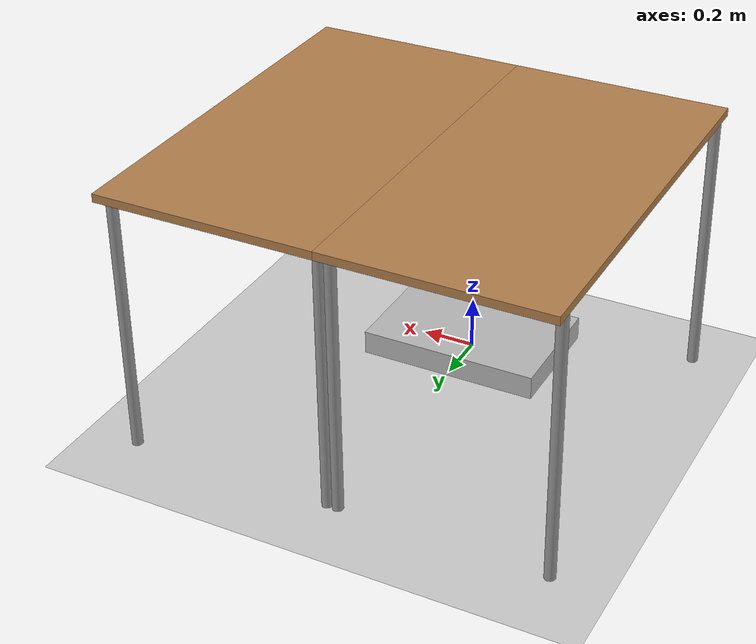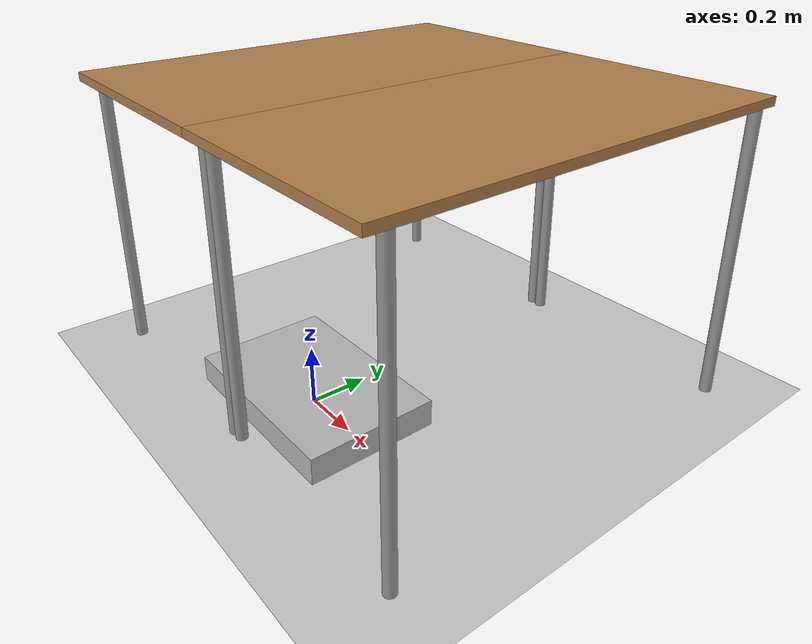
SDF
<sdf version="1.6">
 <world name="default">
  <light name="sun" type="directional">
   <pose>0 0 10 0 -0 0</pose>
   <diffuse>0.8 0.8 0.8 1</diffuse>
   <specular>0.2 0.2 0.2 1</specular>
   <attenuation>
    <range>1000</range>
    <constant>0.9</constant>
    <linear>0.01</linear>
    <quadratic>0.001</quadratic>
   </attenuation>
   <direction>-0.5 0.1 -0.9</direction>
  </light>
  <model name="ground_plane">
   <static>1</static>
   <link name="link">
    <collision name="collision">
     <geometry><plane><normal>0 0 1</normal><size>100 100</size></plane></geometry>
     <surface>
      <contact><collide_bitmask>65535</collide_bitmask></contact>
      <friction><ode><mu>100</mu><mu2>50</mu2></ode></friction>
     </surface>
    </collision>
    <visual name="visual">
     <cast_shadows>0</cast_shadows>
     <geometry><plane><normal>0 0 1</normal><size>100 100</size></plane></geometry>
     <material>
      <script><uri>file://media/materials/scripts/gazebo.material</uri><name>Gazebo/Grey</name></script>
     </material>
    </visual>
   </link>
  </model>
  <gravity>0 0 -9.8</gravity>
  <magnetic_field>6e-06 2.3e-05 -4.2e-05</magnetic_field>
  <atmosphere type="adiabatic"/>
  <physics name="default_physics" default="0" type="ode">
   <max_step_size>0.001</max_step_size>
   <real_time_factor>1</real_time_factor>
   <real_time_update_rate>1000</real_time_update_rate>
  </physics>
  <scene><ambient>0.4 0.4 0.4 1</ambient><background>0.7 0.7 0.7 1</background><shadows>0</shadows></scene>
  <audio><device>default</device></audio>
  <spherical_coordinates>
   <surface_model>EARTH_WGS84</surface_model>
   <latitude_deg>0</latitude_deg>
   <longitude_deg>0</longitude_deg>
   <elevation>0</elevation>
   <heading_deg>0</heading_deg>
  </spherical_coordinates>
  <model name="table">
   <static>1</static>
   <link name="link">
    <collision name="surface">
     <pose>0 0 1 0 -0 0</pose>
     <geometry><box><size>1.5 0.8 0.03</size></box></geometry>
     <surface><friction><ode><mu>0.6</mu><mu2>0.6</mu2></ode></friction></surface>
    </collision>
    <visual name="visual1">
     <pose>0 0 1 0 -0 0</pose>
     <geometry><box><size>1.5 0.8 0.03</size></box></geometry>
     <material>
      <script><uri>file://media/materials/scripts/gazebo.material</uri><name>Gazebo/Wood</name></script>
     </material>
    </visual>
    <collision name="front_left_leg">
     <pose>0.68 0.38 0.5 0 -0 0</pose>
     <geometry><cylinder><radius>0.02</radius><length>1</length></cylinder></geometry>
    </collision>
    <visual name="front_left_leg">
     <pose>0.68 0.38 0.5 0 -0 0</pose>
     <geometry><cylinder><radius>0.02</radius><length>1</length></cylinder></geometry>
     <material>
      <script><uri>file://media/materials/scripts/gazebo.material</uri><name>Gazebo/Grey</name></script>
     </material>
    </visual>
    <collision name="front_right_leg">
     <pose>0.68 -0.38 0.5 0 -0 0</pose>
     <geometry><cylinder><radius>0.02</radius><length>1</length></cylinder></geometry>
    </collision>
    <visual name="front_right_leg">
     <pose>0.68 -0.38 0.5 0 -0 0</pose>
     <geometry><cylinder><radius>0.02</radius><length>1</length></cylinder></geometry>
     <material>
      <script><uri>file://media/materials/scripts/gazebo.material</uri><name>Gazebo/Grey</name></script>
     </material>
    </visual>
    <collision name="back_right_leg">
     <pose>-0.68 -0.38 0.5 0 -0 0</pose>
     <geometry><cylinder><radius>0.02</radius><length>1</length></cylinder></geometry>
    </collision>
    <visual name="back_right_leg">
     <pose>-0.68 -0.38 0.5 0 -0 0</pose>
     <geometry><cylinder><radius>0.02</radius><length>1</length></cylinder></geometry>
     <material>
      <script><uri>file://media/materials/scripts/gazebo.material</uri><name>Gazebo/Grey</name></script>
     </material>
    </visual>
    <collision name="back_left_leg">
     <pose>-0.68 0.38 0.5 0 -0 0</pose>
     <geometry><cylinder><radius>0.02</radius><length>1</length></cylinder></geometry>
    </collision>
    <visual name="back_left_leg">
     <pose>-0.68 0.38 0.5 0 -0 0</pose>
     <geometry><cylinder><radius>0.02</radius><length>1</length></cylinder></geometry>
     <material>
      <script><uri>file://media/materials/scripts/gazebo.material</uri><name>Gazebo/Grey</name></script>
     </material>
    </visual>
   </link>
   <pose>-0.4 0.4 0 0 -0 1.5708</pose>
  </model>
  <model name="table_clone">
   <static>1</static>
   <link name="link">
    <collision name="surface">
     <pose>0 0 1 0 -0 0</pose>
     <geometry><box><size>1.5 0.8 0.03</size></box></geometry>
     <surface><friction><ode><mu>0.6</mu><mu2>0.6</mu2></ode></friction></surface>
    </collision>
    <visual name="visual1">
     <pose>0 0 1 0 -0 0</pose>
     <geometry><box><size>1.5 0.8 0.03</size></box></geometry>
     <material>
      <script><uri>file://media/materials/scripts/gazebo.material</uri><name>Gazebo/Wood</name></script>
     </material>
    </visual>
    <collision name="front_left_leg">
     <pose>0.68 0.38 0.5 0 -0 0</pose>
     <geometry><cylinder><radius>0.02</radius><length>1</length></cylinder></geometry>
    </collision>
    <visual name="front_left_leg">
     <pose>0.68 0.38 0.5 0 -0 0</pose>
     <geometry><cylinder><radius>0.02</radius><length>1</length></cylinder></geometry>
     <material>
      <script><uri>file://media/materials/scripts/gazebo.material</uri><name>Gazebo/Grey</name></script>
     </material>
    </visual>
    <collision name="front_right_leg">
     <pose>0.68 -0.38 0.5 0 -0 0</pose>
     <geometry><cylinder><radius>0.02</radius><length>1</length></cylinder></geometry>
    </collision>
    <visual name="front_right_leg">
     <pose>0.68 -0.38 0.5 0 -0 0</pose>
     <geometry><cylinder><radius>0.02</radius><length>1</length></cylinder></geometry>
     <material>
      <script><uri>file://media/materials/scripts/gazebo.material</uri><name>Gazebo/Grey</name></script>
     </material>
    </visual>
    <collision name="back_right_leg">
     <pose>-0.68 -0.38 0.5 0 -0 0</pose>
     <geometry><cylinder><radius>0.02</radius><length>1</length></cylinder></geometry>
    </collision>
    <visual name="back_right_leg">
     <pose>-0.68 -0.38 0.5 0 -0 0</pose>
     <geometry><cylinder><radius>0.02</radius><length>1</length></cylinder></geometry>
     <material>
      <script><uri>file://media/materials/scripts/gazebo.material</uri><name>Gazebo/Grey</name></script>
     </material>
    </visual>
    <collision name="back_left_leg">
     <pose>-0.68 0.38 0.5 0 -0 0</pose>
     <geometry><cylinder><radius>0.02</radius><length>1</length></cylinder></geometry>
    </collision>
    <visual name="back_left_leg">
     <pose>-0.68 0.38 0.5 0 -0 0</pose>
     <geometry><cylinder><radius>0.02</radius><length>1</length></cylinder></geometry>
     <material>
      <script><uri>file://media/materials/scripts/gazebo.material</uri><name>Gazebo/Grey</name></script>
     </material>
    </visual>
   </link>
   <pose>0.4 0.4 0 0 -0 1.5708</pose>
  </model>
  <model name="chessboard">
   <static>1</static>
   <link name="link_0">
    <inertial>
     <mass>1</mass>
     <inertia>
      <ixx>0.166667</ixx>
      <ixy>0</ixy>
      <ixz>0</ixz>
      <iyy>0.166667</iyy>
      <iyz>0</iyz>
      <izz>0.166667</izz>
     </inertia>
    </inertial>
    <visual name="visual">
     <geometry><mesh><uri>model://chessboard/meshes/chessboard.dae</uri><scale>1 1 1</scale></mesh></geometry>
    </visual>
    <collision name="collision">
     <pose>0 0 0.005 0 -0 0</pose>
     <geometry><box><size>0.368 0.368 0.01</size></box></geometry>
     <surface>
      <friction><ode><mu>1</mu><mu2>1</mu2></ode></friction>
      <contact><ode><kp>1e+07</kp><kd>1</kd><max_vel>0.001</max_vel><min_depth>0.1</min_depth></ode></contact>
     </surface>
    </collision>
   </link>
  </model>
  <model name="chessboard_base">
   <static>1</static>
   <link name="link_0">
    <inertial>
     <mass>1</mass>
     <inertia>
      <ixx>0.166667</ixx>
      <ixy>0</ixy>
      <ixz>0</ixz>
      <iyy>0.166667</iyy>
      <iyz>0</iyz>
      <izz>0.166667</izz>
     </inertia>
    </inertial>
    <visual name="visual">
     <pose>0 0 0.045 0 -0 0</pose>
     <geometry><box><size>0.68 0.45 0.09</size></box></geometry>
    </visual>
    <collision name="collision">
     <pose>0 0 0.045 0 -0 0</pose>
     <geometry><box><size>0.68 0.45 0.09</size></box></geometry>
     <surface>
      <friction><ode><mu>1</mu><mu2>1</mu2></ode></friction>
      <contact><ode><kp>1e+07</kp><kd>1</kd><max_vel>0.001</max_vel><min_depth>0.1</min_depth></ode></contact>
     </surface>
    </collision>
   </link>
  </model>
  <model name="pawn_white0">
   <static>0</static>
   <link name="link_0">
    <inertial>
     <mass>0.01</mass>
     <inertia><ixx>1e-06</ixx><ixy>0</ixy><ixz>0</ixz><iyy>1e-06</iyy><iyz>0</iyz><izz>5e-07</izz></inertia>
    </inertial>
    <kinematic>1</kinematic>
    <visual name="visual">
     <geometry><mesh><uri>model://pawn_white/meshes/pawn.dae</uri><scale>1 1 1</scale></mesh></geometry>
     <material>
      <lighting>1</lighting>
      <script><uri>file://media/materials/scripts/gazebo.material</uri><name>Gazebo/Grey</name></script>
      <shader type="vertex"><normal_map>__default__</normal_map></shader>
      <ambient>1 0.894 0.71 1</ambient>
      <diffuse>0.5 0.4 0.3 1</diffuse>
      <specular>0.01 0.01 0.01 1</specular>
      <emissive>0 0 0 1</emissive>
     </material>
    </visual>
    <collision name="collision">
     <pose>0 0 0.015 0 -0 0</pose>
     <geometry><cylinder><radius>0.005</radius><length>0.03</length></cylinder></geometry>
     <surface>
      <friction><ode><mu>1</mu><mu2>1</mu2></ode></friction>
      <contact><ode><kp>1e+07</kp><kd>1</kd><max_vel>0.001</max_vel><min_depth>0.1</min_depth></ode></contact>
     </surface>
    </collision>
   </link>
  </model>
  <model name="pawn_white1">
   <static>0</static>
   <link name="link_0">
    <inertial>
     <mass>0.01</mass>
     <inertia><ixx>1e-06</ixx><ixy>0</ixy><ixz>0</ixz><iyy>1e-06</iyy><iyz>0</iyz><izz>5e-07</izz></inertia>
    </inertial>
    <kinematic>1</kinematic>
    <visual name="visual">
     <geometry><mesh><uri>model://pawn_white/meshes/pawn.dae</uri><scale>1 1 1</scale></mesh></geometry>
     <material>
      <lighting>1</lighting>
      <script><uri>file://media/materials/scripts/gazebo.material</uri><name>Gazebo/Grey</name></script>
      <shader type="vertex"><normal_map>__default__</normal_map></shader>
      <ambient>1 0.894 0.71 1</ambient>
      <diffuse>0.5 0.4 0.3 1</diffuse>
      <specular>0.01 0.01 0.01 1</specular>
      <emissive>0 0 0 1</emissive>
     </material>
    </visual>
    <collision name="collision">
     <pose>0 0 0.015 0 -0 0</pose>
     <geometry><cylinder><radius>0.005</radius><length>0.03</length></cylinder></geometry>
     <surface>
      <friction><ode><mu>1</mu><mu2>1</mu2></ode></friction>
      <contact><ode><kp>1e+07</kp><kd>1</kd><max_vel>0.001</max_vel><min_depth>0.1</min_depth></ode></contact>
     </surface>
    </collision>
   </link>
  </model>
  <model name="pawn_white2">
   <static>0</static>
   <link name="link_0">
    <inertial>
     <mass>0.01</mass>
     <inertia><ixx>1e-06</ixx><ixy>0</ixy><ixz>0</ixz><iyy>1e-06</iyy><iyz>0</iyz><izz>5e-07</izz></inertia>
    </inertial>
    <kinematic>1</kinematic>
    <visual name="visual">
     <geometry><mesh><uri>model://pawn_white/meshes/pawn.dae</uri><scale>1 1 1</scale></mesh></geometry>
     <material>
      <lighting>1</lighting>
      <script><uri>file://media/materials/scripts/gazebo.material</uri><name>Gazebo/Grey</name></script>
      <shader type="vertex"><normal_map>__default__</normal_map></shader>
      <ambient>1 0.894 0.71 1</ambient>
      <diffuse>0.5 0.4 0.3 1</diffuse>
      <specular>0.01 0.01 0.01 1</specular>
      <emissive>0 0 0 1</emissive>
     </material>
    </visual>
    <collision name="collision">
     <pose>0 0 0.015 0 -0 0</pose>
     <geometry><cylinder><radius>0.005</radius><length>0.03</length></cylinder></geometry>
     <surface>
      <friction><ode><mu>1</mu><mu2>1</mu2></ode></friction>
      <contact><ode><kp>1e+07</kp><kd>1</kd><max_vel>0.001</max_vel><min_depth>0.1</min_depth></ode></contact>
     </surface>
    </collision>
   </link>
  </model>
  <model name="pawn_white3">
   <static>0</static>
   <link name="link_0">
    <inertial>
     <mass>0.01</mass>
     <inertia><ixx>1e-06</ixx><ixy>0</ixy><ixz>0</ixz><iyy>1e-06</iyy><iyz>0</iyz><izz>5e-07</izz></inertia>
    </inertial>
    <kinematic>1</kinematic>
    <visual name="visual">
     <geometry><mesh><uri>model://pawn_white/meshes/pawn.dae</uri><scale>1 1 1</scale></mesh></geometry>
     <material>
      <lighting>1</lighting>
      <script><uri>file://media/materials/scripts/gazebo.material</uri><name>Gazebo/Grey</name></script>
      <shader type="vertex"><normal_map>__default__</normal_map></shader>
      <ambient>1 0.894 0.71 1</ambient>
      <diffuse>0.5 0.4 0.3 1</diffuse>
      <specular>0.01 0.01 0.01 1</specular>
      <emissive>0 0 0 1</emissive>
     </material>
    </visual>
    <collision name="collision">
     <pose>0 0 0.015 0 -0 0</pose>
     <geometry><cylinder><radius>0.005</radius><length>0.03</length></cylinder></geometry>
     <surface>
      <friction><ode><mu>1</mu><mu2>1</mu2></ode></friction>
      <contact><ode><kp>1e+07</kp><kd>1</kd><max_vel>0.001</max_vel><min_depth>0.1</min_depth></ode></contact>
     </surface>
    </collision>
   </link>
  </model>
  <model name="pawn_white4">
   <static>0</static>
   <link name="link_0">
    <inertial>
     <mass>0.01</mass>
     <inertia><ixx>1e-06</ixx><ixy>0</ixy><ixz>0</ixz><iyy>1e-06</iyy><iyz>0</iyz><izz>5e-07</izz></inertia>
    </inertial>
    <kinematic>1</kinematic>
    <visual name="visual">
     <geometry><mesh><uri>model://pawn_white/meshes/pawn.dae</uri><scale>1 1 1</scale></mesh></geometry>
     <material>
      <lighting>1</lighting>
      <script><uri>file://media/materials/scripts/gazebo.material</uri><name>Gazebo/Grey</name></script>
      <shader type="vertex"><normal_map>__default__</normal_map></shader>
      <ambient>1 0.894 0.71 1</ambient>
      <diffuse>0.5 0.4 0.3 1</diffuse>
      <specular>0.01 0.01 0.01 1</specular>
      <emissive>0 0 0 1</emissive>
     </material>
    </visual>
    <collision name="collision">
     <pose>0 0 0.015 0 -0 0</pose>
     <geometry><cylinder><radius>0.005</radius><length>0.03</length></cylinder></geometry>
     <surface>
      <friction><ode><mu>1</mu><mu2>1</mu2></ode></friction>
      <contact><ode><kp>1e+07</kp><kd>1</kd><max_vel>0.001</max_vel><min_depth>0.1</min_depth></ode></contact>
     </surface>
    </collision>
   </link>
  </model>
  <model name="pawn_white5">
   <static>0</static>
   <link name="link_0">
    <inertial>
     <mass>0.01</mass>
     <inertia><ixx>1e-06</ixx><ixy>0</ixy><ixz>0</ixz><iyy>1e-06</iyy><iyz>0</iyz><izz>5e-07</izz></inertia>
    </inertial>
    <kinematic>1</kinematic>
    <visual name="visual">
     <geometry><mesh><uri>model://pawn_white/meshes/pawn.dae</uri><scale>1 1 1</scale></mesh></geometry>
     <material>
      <lighting>1</lighting>
      <script><uri>file://media/materials/scripts/gazebo.material</uri><name>Gazebo/Grey</name></script>
      <shader type="vertex"><normal_map>__default__</normal_map></shader>
      <ambient>1 0.894 0.71 1</ambient>
      <diffuse>0.5 0.4 0.3 1</diffuse>
      <specular>0.01 0.01 0.01 1</specular>
      <emissive>0 0 0 1</emissive>
     </material>
    </visual>
    <collision name="collision">
     <pose>0 0 0.015 0 -0 0</pose>
     <geometry><cylinder><radius>0.005</radius><length>0.03</length></cylinder></geometry>
     <surface>
      <friction><ode><mu>1</mu><mu2>1</mu2></ode></friction>
      <contact><ode><kp>1e+07</kp><kd>1</kd><max_vel>0.001</max_vel><min_depth>0.1</min_depth></ode></contact>
     </surface>
    </collision>
   </link>
  </model>
  <model name="pawn_white6">
   <static>0</static>
   <link name="link_0">
    <inertial>
     <mass>0.01</mass>
     <inertia><ixx>1e-06</ixx><ixy>0</ixy><ixz>0</ixz><iyy>1e-06</iyy><iyz>0</iyz><izz>5e-07</izz></inertia>
    </inertial>
    <kinematic>1</kinematic>
    <visual name="visual">
     <geometry><mesh><uri>model://pawn_white/meshes/pawn.dae</uri><scale>1 1 1</scale></mesh></geometry>
     <material>
      <lighting>1</lighting>
      <script><uri>file://media/materials/scripts/gazebo.material</uri><name>Gazebo/Grey</name></script>
      <shader type="vertex"><normal_map>__default__</normal_map></shader>
      <ambient>1 0.894 0.71 1</ambient>
      <diffuse>0.5 0.4 0.3 1</diffuse>
      <specular>0.01 0.01 0.01 1</specular>
      <emissive>0 0 0 1</emissive>
     </material>
    </visual>
    <collision name="collision">
     <pose>0 0 0.015 0 -0 0</pose>
     <geometry><cylinder><radius>0.005</radius><length>0.03</length></cylinder></geometry>
     <surface>
      <friction><ode><mu>1</mu><mu2>1</mu2></ode></friction>
      <contact><ode><kp>1e+07</kp><kd>1</kd><max_vel>0.001</max_vel><min_depth>0.1</min_depth></ode></contact>
     </surface>
    </collision>
   </link>
  </model>
  <model name="pawn_white7">
   <static>0</static>
   <link name="link_0">
    <inertial>
     <mass>0.01</mass>
     <inertia><ixx>1e-06</ixx><ixy>0</ixy><ixz>0</ixz><iyy>1e-06</iyy><iyz>0</iyz><izz>5e-07</izz></inertia>
    </inertial>
    <kinematic>1</kinematic>
    <visual name="visual">
     <geometry><mesh><uri>model://pawn_white/meshes/pawn.dae</uri><scale>1 1 1</scale></mesh></geometry>
     <material>
      <lighting>1</lighting>
      <script><uri>file://media/materials/scripts/gazebo.material</uri><name>Gazebo/Grey</name></script>
      <shader type="vertex"><normal_map>__default__</normal_map></shader>
      <ambient>1 0.894 0.71 1</ambient>
      <diffuse>0.5 0.4 0.3 1</diffuse>
      <specular>0.01 0.01 0.01 1</specular>
      <emissive>0 0 0 1</emissive>
     </material>
    </visual>
    <collision name="collision">
     <pose>0 0 0.015 0 -0 0</pose>
     <geometry><cylinder><radius>0.005</radius><length>0.03</length></cylinder></geometry>
     <surface>
      <friction><ode><mu>1</mu><mu2>1</mu2></ode></friction>
      <contact><ode><kp>1e+07</kp><kd>1</kd><max_vel>0.001</max_vel><min_depth>0.1</min_depth></ode></contact>
     </surface>
    </collision>
   </link>
  </model>
  <model name="rook_white0">
   <static>0</static>
   <link name="link_0">
    <inertial>
     <mass>0.01</mass>
     <inertia><ixx>1e-06</ixx><ixy>0</ixy><ixz>0</ixz><iyy>1e-06</iyy><iyz>0</iyz><izz>5e-07</izz></inertia>
    </inertial>
    <kinematic>1</kinematic>
    <visual name="visual">
     <geometry><mesh><uri>model://rook_white/meshes/rook.dae</uri><scale>1 1 1</scale></mesh></geometry>
     <material>
      <lighting>1</lighting>
      <script><uri>file://media/materials/scripts/gazebo.material</uri><name>Gazebo/Grey</name></script>
      <shader type="vertex"><normal_map>__default__</normal_map></shader>
      <ambient>1 0.894 0.71 1</ambient>
      <diffuse>0.5 0.4 0.3 1</diffuse>
      <specular>0.01 0.01 0.01 1</specular>
      <emissive>0 0 0 1</emissive>
     </material>
    </visual>
    <collision name="collision">
     <pose>0 0 0.015 0 -0 0</pose>
     <geometry><cylinder><radius>0.005</radius><length>0.03</length></cylinder></geometry>
     <surface>
      <friction><ode><mu>1</mu><mu2>1</mu2></ode></friction>
      <contact><ode><kp>1e+07</kp><kd>1</kd><max_vel>0.001</max_vel><min_depth>0.1</min_depth></ode></contact>
     </surface>
    </collision>
   </link>
  </model>
  <model name="rook_white1">
   <static>0</static>
   <link name="link_0">
    <inertial>
     <mass>0.01</mass>
     <inertia><ixx>1e-06</ixx><ixy>0</ixy><ixz>0</ixz><iyy>1e-06</iyy><iyz>0</iyz><izz>5e-07</izz></inertia>
    </inertial>
    <kinematic>1</kinematic>
    <visual name="visual">
     <geometry><mesh><uri>model://rook_white/meshes/rook.dae</uri><scale>1 1 1</scale></mesh></geometry>
     <material>
      <lighting>1</lighting>
      <script><uri>file://media/materials/scripts/gazebo.material</uri><name>Gazebo/Grey</name></script>
      <shader type="vertex"><normal_map>__default__</normal_map></shader>
      <ambient>1 0.894 0.71 1</ambient>
      <diffuse>0.5 0.4 0.3 1</diffuse>
      <specular>0.01 0.01 0.01 1</specular>
      <emissive>0 0 0 1</emissive>
     </material>
    </visual>
    <collision name="collision">
     <pose>0 0 0.015 0 -0 0</pose>
     <geometry><cylinder><radius>0.005</radius><length>0.03</length></cylinder></geometry>
     <surface>
      <friction><ode><mu>1</mu><mu2>1</mu2></ode></friction>
      <contact><ode><kp>1e+07</kp><kd>1</kd><max_vel>0.001</max_vel><min_depth>0.1</min_depth></ode></contact>
     </surface>
    </collision>
   </link>
  </model>
  <model name="knight_white0">
   <static>0</static>
   <link name="link_0">
    <inertial>
     <mass>0.01</mass>
     <inertia><ixx>1e-06</ixx><ixy>0</ixy><ixz>0</ixz><iyy>1e-06</iyy><iyz>0</iyz><izz>5e-07</izz></inertia>
    </inertial>
    <kinematic>1</kinematic>
    <visual name="visual">
     <geometry><mesh><uri>model://knight_white/meshes/knight.dae</uri><scale>1 1 1</scale></mesh></geometry>
     <material>
      <lighting>1</lighting>
      <script><uri>file://media/materials/scripts/gazebo.material</uri><name>Gazebo/Grey</name></script>
      <shader type="vertex"><normal_map>__default__</normal_map></shader>
      <ambient>1 0.894 0.71 1</ambient>
      <diffuse>0.5 0.4 0.3 1</diffuse>
      <specular>0.01 0.01 0.01 1</specular>
      <emissive>0 0 0 1</emissive>
     </material>
    </visual>
    <collision name="collision">
     <pose>0 0 0.015 0 -0 0</pose>
     <geometry><cylinder><radius>0.005</radius><length>0.03</length></cylinder></geometry>
     <surface>
      <friction><ode><mu>1</mu><mu2>1</mu2></ode></friction>
      <contact><ode><kp>1e+07</kp><kd>1</kd><max_vel>0.001</max_vel><min_depth>0.1</min_depth></ode></contact>
     </surface>
    </collision>
   </link>
  </model>
  <model name="knight_white1">
   <static>0</static>
   <link name="link_0">
    <inertial>
     <mass>0.01</mass>
     <inertia><ixx>1e-06</ixx><ixy>0</ixy><ixz>0</ixz><iyy>1e-06</iyy><iyz>0</iyz><izz>5e-07</izz></inertia>
    </inertial>
    <kinematic>1</kinematic>
    <visual name="visual">
     <geometry><mesh><uri>model://knight_white/meshes/knight.dae</uri><scale>1 1 1</scale></mesh></geometry>
     <material>
      <lighting>1</lighting>
      <script><uri>file://media/materials/scripts/gazebo.material</uri><name>Gazebo/Grey</name></script>
      <shader type="vertex"><normal_map>__default__</normal_map></shader>
      <ambient>1 0.894 0.71 1</ambient>
      <diffuse>0.5 0.4 0.3 1</diffuse>
      <specular>0.01 0.01 0.01 1</specular>
      <emissive>0 0 0 1</emissive>
     </material>
    </visual>
    <collision name="collision">
     <pose>0 0 0.015 0 -0 0</pose>
     <geometry><cylinder><radius>0.005</radius><length>0.03</length></cylinder></geometry>
     <surface>
      <friction><ode><mu>1</mu><mu2>1</mu2></ode></friction>
      <contact><ode><kp>1e+07</kp><kd>1</kd><max_vel>0.001</max_vel><min_depth>0.1</min_depth></ode></contact>
     </surface>
    </collision>
   </link>
  </model>
  <model name="bishop_white0">
   <static>0</static>
   <link name="link_0">
    <inertial>
     <mass>0.01</mass>
     <inertia><ixx>1e-06</ixx><ixy>0</ixy><ixz>0</ixz><iyy>1e-06</iyy><iyz>0</iyz><izz>5e-07</izz></inertia>
    </inertial>
    <kinematic>1</kinematic>
    <visual name="visual">
     <geometry><mesh><uri>model://bishop_white/meshes/bishop.dae</uri><scale>1 1 1</scale></mesh></geometry>
     <material>
      <lighting>1</lighting>
      <script><uri>file://media/materials/scripts/gazebo.material</uri><name>Gazebo/Grey</name></script>
      <shader type="vertex"><normal_map>__default__</normal_map></shader>
      <ambient>1 0.894 0.71 1</ambient>
      <diffuse>0.5 0.4 0.3 1</diffuse>
      <specular>0.01 0.01 0.01 1</specular>
      <emissive>0 0 0 1</emissive>
     </material>
    </visual>
    <collision name="collision">
     <pose>0 0 0.015 0 -0 0</pose>
     <geometry><cylinder><radius>0.005</radius><length>0.03</length></cylinder></geometry>
     <surface>
      <friction><ode><mu>1</mu><mu2>1</mu2></ode></friction>
      <contact>
       <collide_without_contact>0</collide_without_contact>
       <collide_without_contact_bitmask>1</collide_without_contact_bitmask>
       <collide_bitmask>1</collide_bitmask>
       <ode><kp>1e+07</kp><kd>1</kd><max_vel>0.001</max_vel><min_depth>0.1</min_depth></ode>
      </contact>
     </surface>
    </collision>
   </link>
  </model>
  <model name="bishop_white1">
   <static>0</static>
   <link name="link_0">
    <inertial>
     <mass>0.01</mass>
     <inertia><ixx>1e-06</ixx><ixy>0</ixy><ixz>0</ixz><iyy>1e-06</iyy><iyz>0</iyz><izz>5e-07</izz></inertia>
    </inertial>
    <kinematic>1</kinematic>
    <visual name="visual">
     <geometry><mesh><uri>model://bishop_white/meshes/bishop.dae</uri><scale>1 1 1</scale></mesh></geometry>
     <material>
      <lighting>1</lighting>
      <script><uri>file://media/materials/scripts/gazebo.material</uri><name>Gazebo/Grey</name></script>
      <shader type="vertex"><normal_map>__default__</normal_map></shader>
      <ambient>1 0.894 0.71 1</ambient>
      <diffuse>0.5 0.4 0.3 1</diffuse>
      <specular>0.01 0.01 0.01 1</specular>
      <emissive>0 0 0 1</emissive>
     </material>
    </visual>
    <collision name="collision">
     <pose>0 0 0.015 0 -0 0</pose>
     <geometry><cylinder><radius>0.005</radius><length>0.03</length></cylinder></geometry>
     <surface>
      <friction><ode><mu>1</mu><mu2>1</mu2></ode></friction>
      <contact>
       <collide_without_contact>0</collide_without_contact>
       <collide_without_contact_bitmask>1</collide_without_contact_bitmask>
       <collide_bitmask>1</collide_bitmask>
       <ode><kp>1e+07</kp><kd>1</kd><max_vel>0.001</max_vel><min_depth>0.1</min_depth></ode>
      </contact>
     </surface>
    </collision>
   </link>
  </model>
  <model name="king_white0">
   <static>0</static>
   <link name="link_0">
    <inertial>
     <mass>0.01</mass>
     <inertia><ixx>1e-06</ixx><ixy>0</ixy><ixz>0</ixz><iyy>1e-06</iyy><iyz>0</iyz><izz>5e-07</izz></inertia>
    </inertial>
    <kinematic>1</kinematic>
    <visual name="visual">
     <geometry><mesh><uri>model://king_white/meshes/king.dae</uri><scale>1 1 1</scale></mesh></geometry>
     <material>
      <lighting>1</lighting>
      <script><uri>file://media/materials/scripts/gazebo.material</uri><name>Gazebo/Grey</name></script>
      <shader type="vertex"><normal_map>__default__</normal_map></shader>
      <ambient>1 0.894 0.71 1</ambient>
      <diffuse>0.5 0.4 0.3 1</diffuse>
      <specular>0.01 0.01 0.01 1</specular>
      <emissive>0 0 0 1</emissive>
     </material>
    </visual>
    <collision name="collision">
     <pose>0 0 0.015 0 -0 0</pose>
     <geometry><cylinder><radius>0.005</radius><length>0.03</length></cylinder></geometry>
     <surface>
      <friction><ode><mu>1</mu><mu2>1</mu2></ode></friction>
      <contact><ode><kp>1e+07</kp><kd>1</kd><max_vel>0.001</max_vel><min_depth>0.1</min_depth></ode></contact>
     </surface>
    </collision>
   </link>
  </model>
  <model name="queen_white0">
   <static>0</static>
   <link name="link_0">
    <inertial>
     <mass>0.01</mass>
     <inertia><ixx>1e-06</ixx><ixy>0</ixy><ixz>0</ixz><iyy>1e-06</iyy><iyz>0</iyz><izz>5e-07</izz></inertia>
    </inertial>
    <kinematic>1</kinematic>
    <visual name="visual">
     <geometry><mesh><uri>model://queen_white/meshes/queen.dae</uri><scale>1 1 1</scale></mesh></geometry>
     <material>
      <lighting>1</lighting>
      <script><uri>file://media/materials/scripts/gazebo.material</uri><name>Gazebo/Grey</name></script>
      <shader type="vertex"><normal_map>__default__</normal_map></shader>
      <ambient>1 0.894 0.71 1</ambient>
      <diffuse>0.5 0.4 0.3 1</diffuse>
      <specular>0.01 0.01 0.01 1</specular>
      <emissive>0 0 0 1</emissive>
     </material>
    </visual>
    <collision name="collision">
     <pose>0 0 0.015 0 -0 0</pose>
     <geometry><cylinder><radius>0.005</radius><length>0.03</length></cylinder></geometry>
     <surface>
      <friction><ode><mu>1</mu><mu2>1</mu2></ode></friction>
      <contact><ode><kp>1e+07</kp><kd>1</kd><max_vel>0.001</max_vel><min_depth>0.1</min_depth></ode></contact>
     </surface>
    </collision>
   </link>
  </model>
  <model name="pawn_black0">
   <static>0</static>
   <link name="link_0">
    <inertial>
     <mass>0.01</mass>
     <inertia><ixx>1e-06</ixx><ixy>0</ixy><ixz>0</ixz><iyy>1e-06</iyy><iyz>0</iyz><izz>5e-07</izz></inertia>
    </inertial>
    <kinematic>1</kinematic>
    <visual name="visual">
     <geometry><mesh><uri>model://pawn_black/meshes/pawn.dae</uri><scale>1 1 1</scale></mesh></geometry>
     <material>
      <lighting>1</lighting>
      <script><uri>file://media/materials/scripts/gazebo.material</uri><name>Gazebo/Grey</name></script>
      <shader type="vertex"><normal_map>__default__</normal_map></shader>
      <ambient>0.62 0.31 0.12 1</ambient>
      <diffuse>0.4 0.2 0.1 1</diffuse>
      <specular>0.01 0.01 0.01 1</specular>
      <emissive>0 0 0 1</emissive>
     </material>
    </visual>
    <collision name="collision">
     <pose>0 0 0.015 0 -0 0</pose>
     <geometry><cylinder><radius>0.005</radius><length>0.03</length></cylinder></geometry>
     <surface>
      <friction><ode><mu>1</mu><mu2>1</mu2></ode></friction>
      <contact><ode><kp>1e+07</kp><kd>1</kd><max_vel>0.001</max_vel><min_depth>0.1</min_depth></ode></contact>
     </surface>
    </collision>
   </link>
  </model>
  <model name="pawn_black1">
   <static>0</static>
   <link name="link_0">
    <inertial>
     <mass>0.01</mass>
     <inertia><ixx>1e-06</ixx><ixy>0</ixy><ixz>0</ixz><iyy>1e-06</iyy><iyz>0</iyz><izz>5e-07</izz></inertia>
    </inertial>
    <kinematic>1</kinematic>
    <visual name="visual">
     <geometry><mesh><uri>model://pawn_black/meshes/pawn.dae</uri><scale>1 1 1</scale></mesh></geometry>
     <material>
      <lighting>1</lighting>
      <script><uri>file://media/materials/scripts/gazebo.material</uri><name>Gazebo/Grey</name></script>
      <shader type="vertex"><normal_map>__default__</normal_map></shader>
      <ambient>0.62 0.31 0.12 1</ambient>
      <diffuse>0.4 0.2 0.1 1</diffuse>
      <specular>0.01 0.01 0.01 1</specular>
      <emissive>0 0 0 1</emissive>
     </material>
    </visual>
    <collision name="collision">
     <pose>0 0 0.015 0 -0 0</pose>
     <geometry><cylinder><radius>0.005</radius><length>0.03</length></cylinder></geometry>
     <surface>
      <friction><ode><mu>1</mu><mu2>1</mu2></ode></friction>
      <contact><ode><kp>1e+07</kp><kd>1</kd><max_vel>0.001</max_vel><min_depth>0.1</min_depth></ode></contact>
     </surface>
    </collision>
   </link>
  </model>
  <model name="pawn_black2">
   <static>0</static>
   <link name="link_0">
    <inertial>
     <mass>0.01</mass>
     <inertia><ixx>1e-06</ixx><ixy>0</ixy><ixz>0</ixz><iyy>1e-06</iyy><iyz>0</iyz><izz>5e-07</izz></inertia>
    </inertial>
    <kinematic>1</kinematic>
    <visual name="visual">
     <geometry><mesh><uri>model://pawn_black/meshes/pawn.dae</uri><scale>1 1 1</scale></mesh></geometry>
     <material>
      <lighting>1</lighting>
      <script><uri>file://media/materials/scripts/gazebo.material</uri><name>Gazebo/Grey</name></script>
      <shader type="vertex"><normal_map>__default__</normal_map></shader>
      <ambient>0.62 0.31 0.12 1</ambient>
      <diffuse>0.4 0.2 0.1 1</diffuse>
      <specular>0.01 0.01 0.01 1</specular>
      <emissive>0 0 0 1</emissive>
     </material>
    </visual>
    <collision name="collision">
     <pose>0 0 0.015 0 -0 0</pose>
     <geometry><cylinder><radius>0.005</radius><length>0.03</length></cylinder></geometry>
     <surface>
      <friction><ode><mu>1</mu><mu2>1</mu2></ode></friction>
      <contact><ode><kp>1e+07</kp><kd>1</kd><max_vel>0.001</max_vel><min_depth>0.1</min_depth></ode></contact>
     </surface>
    </collision>
   </link>
  </model>
  <model name="pawn_black3">
   <static>0</static>
   <link name="link_0">
    <inertial>
     <mass>0.01</mass>
     <inertia><ixx>1e-06</ixx><ixy>0</ixy><ixz>0</ixz><iyy>1e-06</iyy><iyz>0</iyz><izz>5e-07</izz></inertia>
    </inertial>
    <kinematic>1</kinematic>
    <visual name="visual">
     <geometry><mesh><uri>model://pawn_black/meshes/pawn.dae</uri><scale>1 1 1</scale></mesh></geometry>
     <material>
      <lighting>1</lighting>
      <script><uri>file://media/materials/scripts/gazebo.material</uri><name>Gazebo/Grey</name></script>
      <shader type="vertex"><normal_map>__default__</normal_map></shader>
      <ambient>0.62 0.31 0.12 1</ambient>
      <diffuse>0.4 0.2 0.1 1</diffuse>
      <specular>0.01 0.01 0.01 1</specular>
      <emissive>0 0 0 1</emissive>
     </material>
    </visual>
    <collision name="collision">
     <pose>0 0 0.015 0 -0 0</pose>
     <geometry><cylinder><radius>0.005</radius><length>0.03</length></cylinder></geometry>
     <surface>
      <friction><ode><mu>1</mu><mu2>1</mu2></ode></friction>
      <contact><ode><kp>1e+07</kp><kd>1</kd><max_vel>0.001</max_vel><min_depth>0.1</min_depth></ode></contact>
     </surface>
    </collision>
   </link>
  </model>
  <model name="pawn_black4">
   <static>0</static>
   <link name="link_0">
    <inertial>
     <mass>0.01</mass>
     <inertia><ixx>1e-06</ixx><ixy>0</ixy><ixz>0</ixz><iyy>1e-06</iyy><iyz>0</iyz><izz>5e-07</izz></inertia>
    </inertial>
    <kinematic>1</kinematic>
    <visual name="visual">
     <geometry><mesh><uri>model://pawn_black/meshes/pawn.dae</uri><scale>1 1 1</scale></mesh></geometry>
     <material>
      <lighting>1</lighting>
      <script><uri>file://media/materials/scripts/gazebo.material</uri><name>Gazebo/Grey</name></script>
      <shader type="vertex"><normal_map>__default__</normal_map></shader>
      <ambient>0.62 0.31 0.12 1</ambient>
      <diffuse>0.4 0.2 0.1 1</diffuse>
      <specular>0.01 0.01 0.01 1</specular>
      <emissive>0 0 0 1</emissive>
     </material>
    </visual>
    <collision name="collision">
     <pose>0 0 0.015 0 -0 0</pose>
     <geometry><cylinder><radius>0.005</radius><length>0.03</length></cylinder></geometry>
     <surface>
      <friction><ode><mu>1</mu><mu2>1</mu2></ode></friction>
      <contact><ode><kp>1e+07</kp><kd>1</kd><max_vel>0.001</max_vel><min_depth>0.1</min_depth></ode></contact>
     </surface>
    </collision>
   </link>
  </model>
  <model name="pawn_black5">
   <static>0</static>
   <link name="link_0">
    <inertial>
     <mass>0.01</mass>
     <inertia><ixx>1e-06</ixx><ixy>0</ixy><ixz>0</ixz><iyy>1e-06</iyy><iyz>0</iyz><izz>5e-07</izz></inertia>
    </inertial>
    <kinematic>1</kinematic>
    <visual name="visual">
     <geometry><mesh><uri>model://pawn_black/meshes/pawn.dae</uri><scale>1 1 1</scale></mesh></geometry>
     <material>
      <lighting>1</lighting>
      <script><uri>file://media/materials/scripts/gazebo.material</uri><name>Gazebo/Grey</name></script>
      <shader type="vertex"><normal_map>__default__</normal_map></shader>
      <ambient>0.62 0.31 0.12 1</ambient>
      <diffuse>0.4 0.2 0.1 1</diffuse>
      <specular>0.01 0.01 0.01 1</specular>
      <emissive>0 0 0 1</emissive>
     </material>
    </visual>
    <collision name="collision">
     <pose>0 0 0.015 0 -0 0</pose>
     <geometry><cylinder><radius>0.005</radius><length>0.03</length></cylinder></geometry>
     <surface>
      <friction><ode><mu>1</mu><mu2>1</mu2></ode></friction>
      <contact><ode><kp>1e+07</kp><kd>1</kd><max_vel>0.001</max_vel><min_depth>0.1</min_depth></ode></contact>
     </surface>
    </collision>
   </link>
  </model>
  <model name="pawn_black6">
   <static>0</static>
   <link name="link_0">
    <inertial>
     <mass>0.01</mass>
     <inertia><ixx>1e-06</ixx><ixy>0</ixy><ixz>0</ixz><iyy>1e-06</iyy><iyz>0</iyz><izz>5e-07</izz></inertia>
    </inertial>
    <kinematic>1</kinematic>
    <visual name="visual">
     <geometry><mesh><uri>model://pawn_black/meshes/pawn.dae</uri><scale>1 1 1</scale></mesh></geometry>
     <material>
      <lighting>1</lighting>
      <script><uri>file://media/materials/scripts/gazebo.material</uri><name>Gazebo/Grey</name></script>
      <shader type="vertex"><normal_map>__default__</normal_map></shader>
      <ambient>0.62 0.31 0.12 1</ambient>
      <diffuse>0.4 0.2 0.1 1</diffuse>
      <specular>0.01 0.01 0.01 1</specular>
      <emissive>0 0 0 1</emissive>
     </material>
    </visual>
    <collision name="collision">
     <pose>0 0 0.015 0 -0 0</pose>
     <geometry><cylinder><radius>0.005</radius><length>0.03</length></cylinder></geometry>
     <surface>
      <friction><ode><mu>1</mu><mu2>1</mu2></ode></friction>
      <contact><ode><kp>1e+07</kp><kd>1</kd><max_vel>0.001</max_vel><min_depth>0.1</min_depth></ode></contact>
     </surface>
    </collision>
   </link>
  </model>
  <model name="pawn_black7">
   <static>0</static>
   <link name="link_0">
    <inertial>
     <mass>0.01</mass>
     <inertia><ixx>1e-06</ixx><ixy>0</ixy><ixz>0</ixz><iyy>1e-06</iyy><iyz>0</iyz><izz>5e-07</izz></inertia>
    </inertial>
    <kinematic>1</kinematic>
    <visual name="visual">
     <geometry><mesh><uri>model://pawn_black/meshes/pawn.dae</uri><scale>1 1 1</scale></mesh></geometry>
     <material>
      <lighting>1</lighting>
      <script><uri>file://media/materials/scripts/gazebo.material</uri><name>Gazebo/Grey</name></script>
      <shader type="vertex"><normal_map>__default__</normal_map></shader>
      <ambient>0.62 0.31 0.12 1</ambient>
      <diffuse>0.4 0.2 0.1 1</diffuse>
      <specular>0.01 0.01 0.01 1</specular>
      <emissive>0 0 0 1</emissive>
     </material>
    </visual>
    <collision name="collision">
     <pose>0 0 0.015 0 -0 0</pose>
     <geometry><cylinder><radius>0.005</radius><length>0.03</length></cylinder></geometry>
     <surface>
      <friction><ode><mu>1</mu><mu2>1</mu2></ode></friction>
      <contact><ode><kp>1e+07</kp><kd>1</kd><max_vel>0.001</max_vel><min_depth>0.1</min_depth></ode></contact>
     </surface>
    </collision>
   </link>
  </model>
  <model name="rook_black0">
   <static>0</static>
   <link name="link_0">
    <inertial>
     <mass>0.01</mass>
     <inertia><ixx>1e-06</ixx><ixy>0</ixy><ixz>0</ixz><iyy>1e-06</iyy><iyz>0</iyz><izz>5e-07</izz></inertia>
    </inertial>
    <kinematic>1</kinematic>
    <visual name="visual">
     <geometry><mesh><uri>model://rook_black/meshes/rook.dae</uri><scale>1 1 1</scale></mesh></geometry>
     <material>
      <lighting>1</lighting>
      <script><uri>file://media/materials/scripts/gazebo.material</uri><name>Gazebo/Grey</name></script>
      <shader type="vertex"><normal_map>__default__</normal_map></shader>
      <ambient>0.62 0.31 0.12 1</ambient>
      <diffuse>0.4 0.2 0.1 1</diffuse>
      <specular>0.01 0.01 0.01 1</specular>
      <emissive>0 0 0 1</emissive>
     </material>
    </visual>
    <collision name="collision">
     <pose>0 0 0.015 0 -0 0</pose>
     <geometry><cylinder><radius>0.005</radius><length>0.03</length></cylinder></geometry>
     <surface>
      <friction><ode><mu>1</mu><mu2>1</mu2></ode></friction>
      <contact><ode><kp>1e+07</kp><kd>1</kd><max_vel>0.001</max_vel><min_depth>0.1</min_depth></ode></contact>
     </surface>
    </collision>
   </link>
  </model>
  <model name="rook_black1">
   <static>0</static>
   <link name="link_0">
    <inertial>
     <mass>0.01</mass>
     <inertia><ixx>1e-06</ixx><ixy>0</ixy><ixz>0</ixz><iyy>1e-06</iyy><iyz>0</iyz><izz>5e-07</izz></inertia>
    </inertial>
    <kinematic>1</kinematic>
    <visual name="visual">
     <geometry><mesh><uri>model://rook_black/meshes/rook.dae</uri><scale>1 1 1</scale></mesh></geometry>
     <material>
      <lighting>1</lighting>
      <script><uri>file://media/materials/scripts/gazebo.material</uri><name>Gazebo/Grey</name></script>
      <shader type="vertex"><normal_map>__default__</normal_map></shader>
      <ambient>0.62 0.31 0.12 1</ambient>
      <diffuse>0.4 0.2 0.1 1</diffuse>
      <specular>0.01 0.01 0.01 1</specular>
      <emissive>0 0 0 1</emissive>
     </material>
    </visual>
    <collision name="collision">
     <pose>0 0 0.015 0 -0 0</pose>
     <geometry><cylinder><radius>0.005</radius><length>0.03</length></cylinder></geometry>
     <surface>
      <friction><ode><mu>1</mu><mu2>1</mu2></ode></friction>
      <contact><ode><kp>1e+07</kp><kd>1</kd><max_vel>0.001</max_vel><min_depth>0.1</min_depth></ode></contact>
     </surface>
    </collision>
   </link>
  </model>
  <model name="knight_black0">
   <static>0</static>
   <link name="link_0">
    <inertial>
     <mass>0.01</mass>
     <inertia><ixx>1e-06</ixx><ixy>0</ixy><ixz>0</ixz><iyy>1e-06</iyy><iyz>0</iyz><izz>5e-07</izz></inertia>
    </inertial>
    <kinematic>1</kinematic>
    <visual name="visual">
     <geometry><mesh><uri>model://knight_black/meshes/knight.dae</uri><scale>1 1 1</scale></mesh></geometry>
     <material>
      <lighting>1</lighting>
      <script><uri>file://media/materials/scripts/gazebo.material</uri><name>Gazebo/Grey</name></script>
      <shader type="vertex"><normal_map>__default__</normal_map></shader>
      <ambient>0.62 0.31 0.12 1</ambient>
      <diffuse>0.4 0.2 0.1 1</diffuse>
      <specular>0.01 0.01 0.01 1</specular>
      <emissive>0 0 0 1</emissive>
     </material>
    </visual>
    <collision name="collision">
     <pose>0 0 0.015 0 -0 0</pose>
     <geometry><cylinder><radius>0.005</radius><length>0.03</length></cylinder></geometry>
     <surface>
      <friction><ode><mu>1</mu><mu2>1</mu2></ode></friction>
      <contact><ode><kp>1e+07</kp><kd>1</kd><max_vel>0.001</max_vel><min_depth>0.1</min_depth></ode></contact>
     </surface>
    </collision>
   </link>
  </model>
  <model name="knight_black1">
   <static>0</static>
   <link name="link_0">
    <inertial>
     <mass>0.01</mass>
     <inertia><ixx>1e-06</ixx><ixy>0</ixy><ixz>0</ixz><iyy>1e-06</iyy><iyz>0</iyz><izz>5e-07</izz></inertia>
    </inertial>
    <kinematic>1</kinematic>
    <visual name="visual">
     <geometry><mesh><uri>model://knight_black/meshes/knight.dae</uri><scale>1 1 1</scale></mesh></geometry>
     <material>
      <lighting>1</lighting>
      <script><uri>file://media/materials/scripts/gazebo.material</uri><name>Gazebo/Grey</name></script>
      <shader type="vertex"><normal_map>__default__</normal_map></shader>
      <ambient>0.62 0.31 0.12 1</ambient>
      <diffuse>0.4 0.2 0.1 1</diffuse>
      <specular>0.01 0.01 0.01 1</specular>
      <emissive>0 0 0 1</emissive>
     </material>
    </visual>
    <collision name="collision">
     <pose>0 0 0.015 0 -0 0</pose>
     <geometry><cylinder><radius>0.005</radius><length>0.03</length></cylinder></geometry>
     <surface>
      <friction><ode><mu>1</mu><mu2>1</mu2></ode></friction>
      <contact><ode><kp>1e+07</kp><kd>1</kd><max_vel>0.001</max_vel><min_depth>0.1</min_depth></ode></contact>
     </surface>
    </collision>
   </link>
  </model>
  <model name="bishop_black0">
   <static>0</static>
   <link name="link_0">
    <inertial>
     <mass>0.01</mass>
     <inertia><ixx>1e-06</ixx><ixy>0</ixy><ixz>0</ixz><iyy>1e-06</iyy><iyz>0</iyz><izz>5e-07</izz></inertia>
    </inertial>
    <kinematic>1</kinematic>
    <visual name="visual">
     <geometry><mesh><uri>model://bishop_black/meshes/bishop.dae</uri><scale>1 1 1</scale></mesh></geometry>
     <material>
      <lighting>1</lighting>
      <script><uri>file://media/materials/scripts/gazebo.material</uri><name>Gazebo/Grey</name></script>
      <shader type="vertex"><normal_map>__default__</normal_map></shader>
      <ambient>0.62 0.31 0.12 1</ambient>
      <diffuse>0.4 0.2 0.1 1</diffuse>
      <specular>0.01 0.01 0.01 1</specular>
      <emissive>0 0 0 1</emissive>
     </material>
    </visual>
    <collision name="collision">
     <pose>0 0 0.015 0 -0 0</pose>
     <geometry><cylinder><radius>0.005</radius><length>0.03</length></cylinder></geometry>
     <surface>
      <friction><ode><mu>1</mu><mu2>1</mu2></ode></friction>
      <contact><ode><kp>1e+07</kp><kd>1</kd><max_vel>0.001</max_vel><min_depth>0.1</min_depth></ode></contact>
     </surface>
    </collision>
   </link>
  </model>
  <model name="bishop_black1">
   <static>0</static>
   <link name="link_0">
    <inertial>
     <mass>0.01</mass>
     <inertia><ixx>1e-06</ixx><ixy>0</ixy><ixz>0</ixz><iyy>1e-06</iyy><iyz>0</iyz><izz>5e-07</izz></inertia>
    </inertial>
    <kinematic>1</kinematic>
    <visual name="visual">
     <geometry><mesh><uri>model://bishop_black/meshes/bishop.dae</uri><scale>1 1 1</scale></mesh></geometry>
     <material>
      <lighting>1</lighting>
      <script><uri>file://media/materials/scripts/gazebo.material</uri><name>Gazebo/Grey</name></script>
      <shader type="vertex"><normal_map>__default__</normal_map></shader>
      <ambient>0.62 0.31 0.12 1</ambient>
      <diffuse>0.4 0.2 0.1 1</diffuse>
      <specular>0.01 0.01 0.01 1</specular>
      <emissive>0 0 0 1</emissive>
     </material>
    </visual>
    <collision name="collision">
     <pose>0 0 0.015 0 -0 0</pose>
     <geometry><cylinder><radius>0.005</radius><length>0.03</length></cylinder></geometry>
     <surface>
      <friction><ode><mu>1</mu><mu2>1</mu2></ode></friction>
      <contact><ode><kp>1e+07</kp><kd>1</kd><max_vel>0.001</max_vel><min_depth>0.1</min_depth></ode></contact>
     </surface>
    </collision>
   </link>
  </model>
  <model name="king_black0">
   <static>0</static>
   <link name="link_0">
    <inertial>
     <mass>0.01</mass>
     <inertia><ixx>1e-06</ixx><ixy>0</ixy><ixz>0</ixz><iyy>1e-06</iyy><iyz>0</iyz><izz>5e-07</izz></inertia>
    </inertial>
    <kinematic>1</kinematic>
    <visual name="visual">
     <geometry><mesh><uri>model://king_black/meshes/king.dae</uri><scale>1 1 1</scale></mesh></geometry>
     <material>
      <lighting>1</lighting>
      <script><uri>file://media/materials/scripts/gazebo.material</uri><name>Gazebo/Grey</name></script>
      <shader type="vertex"><normal_map>__default__</normal_map></shader>
      <ambient>0.62 0.31 0.12 1</ambient>
      <diffuse>0.4 0.2 0.1 1</diffuse>
      <specular>0.01 0.01 0.01 1</specular>
      <emissive>0 0 0 1</emissive>
     </material>
    </visual>
    <collision name="collision">
     <pose>0 0 0.015 0 -0 0</pose>
     <geometry><cylinder><radius>0.005</radius><length>0.03</length></cylinder></geometry>
     <surface>
      <friction><ode><mu>1</mu><mu2>1</mu2></ode></friction>
      <contact><ode><kp>1e+07</kp><kd>1</kd><max_vel>0.001</max_vel><min_depth>0.1</min_depth></ode></contact>
     </surface>
    </collision>
   </link>
  </model>
  <model name="queen_black0">
   <static>0</static>
   <link name="link_0">
    <inertial>
     <mass>0.01</mass>
     <inertia><ixx>1e-06</ixx><ixy>0</ixy><ixz>0</ixz><iyy>1e-06</iyy><iyz>0</iyz><izz>5e-07</izz></inertia>
    </inertial>
    <kinematic>1</kinematic>
    <visual name="visual">
     <geometry><mesh><uri>model://queen_black/meshes/queen.dae</uri><scale>1 1 1</scale></mesh></geometry>
     <material>
      <lighting>1</lighting>
      <script><uri>file://media/materials/scripts/gazebo.material</uri><name>Gazebo/Grey</name></script>
      <shader type="vertex"><normal_map>__default__</normal_map></shader>
      <ambient>0.62 0.31 0.12 1</ambient>
      <diffuse>0.4 0.2 0.1 1</diffuse>
      <specular>0.01 0.01 0.01 1</specular>
      <emissive>0 0 0 1</emissive>
     </material>
    </visual>
    <collision name="collision">
     <pose>0 0 0.015 0 -0 0</pose>
     <geometry><cylinder><radius>0.005</radius><length>0.03</length></cylinder></geometry>
     <surface>
      <friction><ode><mu>1</mu><mu2>1</mu2></ode></friction>
      <contact><ode><kp>1e+07</kp><kd>1</kd><max_vel>0.001</max_vel><min_depth>0.1</min_depth></ode></contact>
     </surface>
    </collision>
   </link>
  </model>
  <plugin name="ros_link_attacher_plugin" filename="libgazebo_ros_link_attacher.so"/>
 </world>
</sdf>
